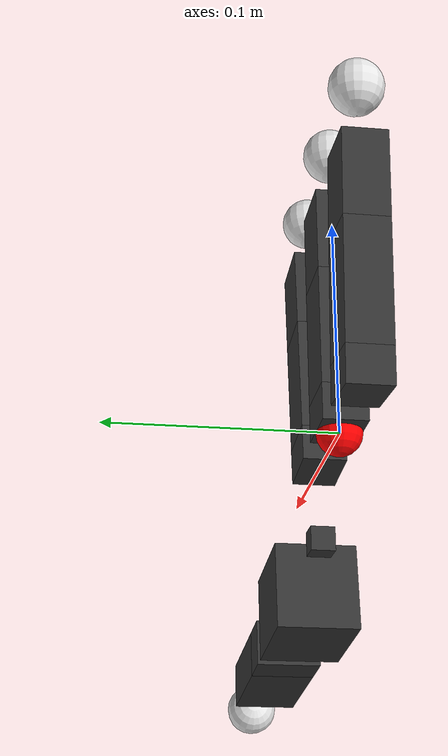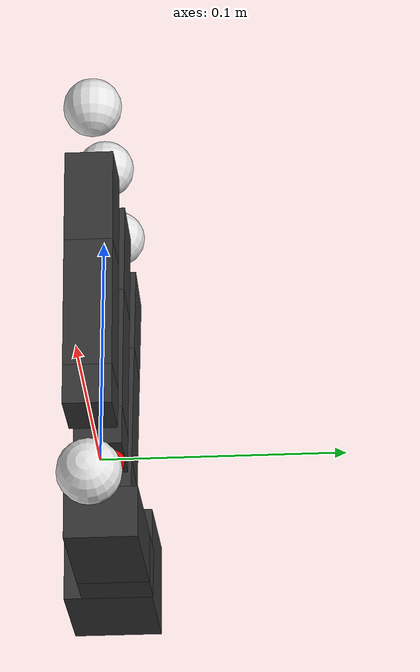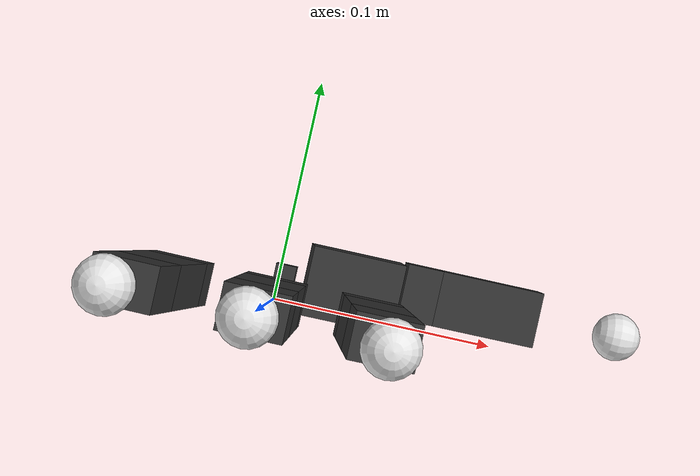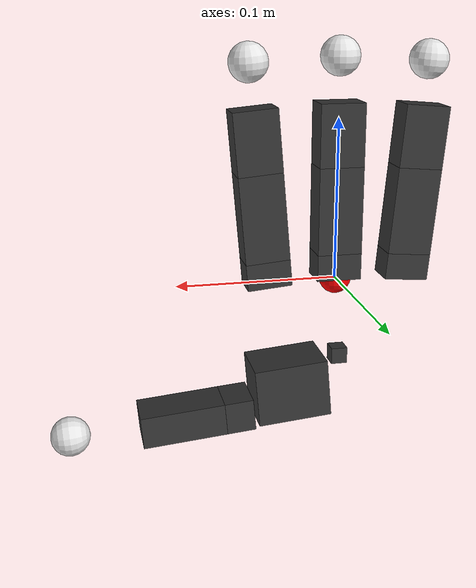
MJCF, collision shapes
<mujoco model="allegro">
  <compiler angle="radian"/>

  <asset>
    <mesh name="base_link" file="allegro/meshes/base_link.obj"/>
    <mesh name="link_0.0" file="allegro/meshes/link_0.0.obj"/>
    <mesh name="link_1.0" file="allegro/meshes/link_1.0.obj"/>
    <mesh name="link_2.0" file="allegro/meshes/link_2.0.obj"/>
    <mesh name="link_3.0" file="allegro/meshes/link_3.0.obj"/>
    <mesh name="link_3.0_tip" file="allegro/meshes/link_3.0_tip.obj"/>
    <mesh name="link_12.0_right" file="allegro/meshes/link_12.0_right.obj"/>
    <mesh name="link_13.0" file="allegro/meshes/link_13.0.obj"/>
    <mesh name="link_14.0" file="allegro/meshes/link_14.0.obj"/>
    <mesh name="link_15.0" file="allegro/meshes/link_15.0.obj"/>
    <mesh name="link_15.0_tip" file="allegro/meshes/link_15.0_tip.obj"/>
  </asset>

  <worldbody>
   <body name="eef" pos="0 0 0" quat="0.707107 0 0 -0.707107">
        <site name="ft_frame" pos="0 0 0" size="0.01 0.01 0.01" rgba="1 0 0 1" type="sphere" group="1"/>
        <geom type="mesh" contype="0" conaffinity="0" group="1" density="0" rgba="0.2 0.2 0.2 1" mesh="base_link"/>
        <geom size="0.005 0.005 0.005" pos="-0.0093 0 -0.0475" type="box" rgba="0.2 0.2 0.2 1"/>
        <body name="link_0.0" pos="0 0.0435 -0.001542" quat="0.999048 -0.0436194 0 0">
        <inertial pos="0 0 0" quat="0.707107 0.707107 0 0" mass="0.0119" diaginertia="1.01667e-06 1.01667e-06 6.47677e-07"/>
        <joint name="joint_0.0" pos="0 0 0" axis="0 0 1" range="-0.47 0.47" actuatorfrcrange="-0.35 0.35"/>
        <geom type="mesh" contype="0" conaffinity="0" group="1" density="0" rgba="0.2 0.2 0.2 1" mesh="link_0.0"/>
        <geom size="0.0098 0.01375 0.0082" pos="0 0 0.0082" type="box" rgba="0.2 0.2 0.2 1"/>
        <body name="link_1.0" pos="0 0 0.0164">
            <inertial pos="0 0 0" quat="0.702596 0.559386 -0.178354 0.402039" mass="0.065" diaginertia="6.12799e-05 6.12799e-05 6.12799e-05"/>
            <joint name="joint_1.0" pos="0 0 0" axis="0 1 0" range="-0.196 1.61" actuatorfrcrange="-0.35 0.35"/>
            <geom type="mesh" contype="0" conaffinity="0" group="1" density="0" rgba="0.2 0.2 0.2 1" mesh="link_1.0"/>
            <geom size="0.0098 0.01375 0.027" pos="0 0 0.027" type="box" rgba="0.2 0.2 0.2 1"/>
            <body name="link_2.0" pos="0 0 0.054">
            <inertial pos="0 0 0" quat="0.719796 0.528175 -0.157463 0.422055" mass="0.0355" diaginertia="2.20969e-05 2.20969e-05 2.20969e-05"/>
            <joint name="joint_2.0" pos="0 0 0" axis="0 1 0" range="-0.174 1.709" actuatorfrcrange="-0.35 0.35"/>
            <geom type="mesh" contype="0" conaffinity="0" group="1" density="0" rgba="0.2 0.2 0.2 1" mesh="link_2.0"/>
            <geom size="0.0098 0.01375 0.0192" pos="0 0 0.0192" type="box" rgba="0.2 0.2 0.2 1"/>
            <body name="link_3.0" pos="0 0 0.0384">
                <inertial pos="0 0 0.0169909" mass="0.0264" diaginertia="9.67371e-06 9.67371e-06 5.3186e-06"/>
                <joint name="joint_3.0" pos="0 0 0" axis="0 1 0" range="-0.227 1.618" actuatorfrcrange="-0.35 0.35"/>
                <geom type="mesh" contype="0" conaffinity="0" group="1" density="0" rgba="0.2 0.2 0.2 1" mesh="link_3.0"/>
                <geom size="0.0001" pos="0 0 0.01335" rgba="0.2 0.2 0.2 1"/>
                <geom pos="0 0 0.0267" type="mesh" contype="0" conaffinity="0" group="1" density="0" rgba="0.9 0.9 0.9 1" mesh="link_3.0_tip"/>
                <geom size="0.012" pos="0 0 0.0267" rgba="0.9 0.9 0.9 1"/>
            </body>
            </body>
        </body>
        </body>
        <body name="link_4.0" pos="0 0 0.0007">
        <inertial pos="0 0 0" quat="0.707107 0.707107 0 0" mass="0.0119" diaginertia="1.01667e-06 1.01667e-06 6.47677e-07"/>
        <joint name="joint_4.0" pos="0 0 0" axis="0 0 1" range="-0.47 0.47" actuatorfrcrange="-0.35 0.35"/>
        <geom type="mesh" contype="0" conaffinity="0" group="1" density="0" rgba="0.2 0.2 0.2 1" mesh="link_0.0"/>
        <geom size="0.0098 0.01375 0.0082" pos="0 0 0.0082" type="box" rgba="0.2 0.2 0.2 1"/>
        <body name="link_5.0" pos="0 0 0.0164">
            <inertial pos="0 0 0" quat="0.702596 0.559386 -0.178354 0.402039" mass="0.065" diaginertia="6.12799e-05 6.12799e-05 6.12799e-05"/>
            <joint name="joint_5.0" pos="0 0 0" axis="0 1 0" range="-0.196 1.61" actuatorfrcrange="-0.35 0.35"/>
            <geom type="mesh" contype="0" conaffinity="0" group="1" density="0" rgba="0.2 0.2 0.2 1" mesh="link_1.0"/>
            <geom size="0.0098 0.01375 0.027" pos="0 0 0.027" type="box" rgba="0.2 0.2 0.2 1"/>
            <body name="link_6.0" pos="0 0 0.054">
            <inertial pos="0 0 0" quat="0.719796 0.528175 -0.157463 0.422055" mass="0.0355" diaginertia="2.20969e-05 2.20969e-05 2.20969e-05"/>
            <joint name="joint_6.0" pos="0 0 0" axis="0 1 0" range="-0.174 1.709" actuatorfrcrange="-0.35 0.35"/>
            <geom type="mesh" contype="0" conaffinity="0" group="1" density="0" rgba="0.2 0.2 0.2 1" mesh="link_2.0"/>
            <geom size="0.0098 0.01375 0.0192" pos="0 0 0.0192" type="box" rgba="0.2 0.2 0.2 1"/>
            <body name="link_7.0" pos="0 0 0.0384">
                <inertial pos="0 0 0.0169909" mass="0.0264" diaginertia="9.67371e-06 9.67371e-06 5.3186e-06"/>
                <joint name="joint_7.0" pos="0 0 0" axis="0 1 0" range="-0.227 1.618" actuatorfrcrange="-0.35 0.35"/>
                <geom type="mesh" contype="0" conaffinity="0" group="1" density="0" rgba="0.2 0.2 0.2 1" mesh="link_3.0"/>
                <geom size="0.0001" pos="0 0 0.01335" rgba="0.2 0.2 0.2 1"/>
                <geom pos="0 0 0.0267" type="mesh" contype="0" conaffinity="0" group="1" density="0" rgba="0.9 0.9 0.9 1" mesh="link_3.0_tip"/>
                <geom size="0.012" pos="0 0 0.0267" rgba="0.9 0.9 0.9 1"/>
            </body>
            </body>
        </body>
        </body>
        <body name="link_8.0" pos="0 -0.0435 -0.001542" quat="0.999048 0.0436194 0 0">
        <inertial pos="0 0 0" quat="0.707107 0.707107 0 0" mass="0.0119" diaginertia="1.01667e-06 1.01667e-06 6.47677e-07"/>
        <joint name="joint_8.0" pos="0 0 0" axis="0 0 1" range="-0.47 0.47" actuatorfrcrange="-0.35 0.35"/>
        <geom type="mesh" contype="0" conaffinity="0" group="1" density="0" rgba="0.2 0.2 0.2 1" mesh="link_0.0"/>
        <geom size="0.0098 0.01375 0.0082" pos="0 0 0.0082" type="box" rgba="0.2 0.2 0.2 1"/>
        <body name="link_9.0" pos="0 0 0.0164">
            <inertial pos="0 0 0" quat="0.702596 0.559386 -0.178354 0.402039" mass="0.065" diaginertia="6.12799e-05 6.12799e-05 6.12799e-05"/>
            <joint name="joint_9.0" pos="0 0 0" axis="0 1 0" range="-0.196 1.61" actuatorfrcrange="-0.35 0.35"/>
            <geom type="mesh" contype="0" conaffinity="0" group="1" density="0" rgba="0.2 0.2 0.2 1" mesh="link_1.0"/>
            <geom size="0.0098 0.01375 0.027" pos="0 0 0.027" type="box" rgba="0.2 0.2 0.2 1"/>
            <body name="link_10.0" pos="0 0 0.054">
            <inertial pos="0 0 0" quat="0.719796 0.528175 -0.157463 0.422055" mass="0.0355" diaginertia="2.20969e-05 2.20969e-05 2.20969e-05"/>
            <joint name="joint_10.0" pos="0 0 0" axis="0 1 0" range="-0.174 1.709" actuatorfrcrange="-0.35 0.35"/>
            <geom type="mesh" contype="0" conaffinity="0" group="1" density="0" rgba="0.2 0.2 0.2 1" mesh="link_2.0"/>
            <geom size="0.0098 0.01375 0.0192" pos="0 0 0.0192" type="box" rgba="0.2 0.2 0.2 1"/>
            <body name="link_11.0" pos="0 0 0.0384">
                <inertial pos="0 0 0.0169909" mass="0.0264" diaginertia="9.67371e-06 9.67371e-06 5.3186e-06"/>
                <joint name="joint_11.0" pos="0 0 0" axis="0 1 0" range="-0.227 1.618" actuatorfrcrange="-0.35 0.35"/>
                <geom type="mesh" contype="0" conaffinity="0" group="1" density="0" rgba="0.2 0.2 0.2 1" mesh="link_3.0"/>
                <geom size="0.0001" pos="0 0 0.01335" rgba="0.2 0.2 0.2 1"/>
                <geom pos="0 0 0.0267" type="mesh" contype="0" conaffinity="0" group="1" density="0" rgba="0.9 0.9 0.9 1" mesh="link_3.0_tip"/>
                <geom size="0.012" pos="0 0 0.0267" rgba="0.9 0.9 0.9 1"/>
            </body>
            </body>
        </body>
        </body>
        <body name="link_12.0" pos="-0.0182 0.019333 -0.045987" quat="0.477714 -0.521334 -0.521334 -0.477714">
        <inertial pos="0 0 0" quat="0.692635 0.569362 -0.07143 0.437013" mass="0.0176" diaginertia="1.73852e-05 1.73852e-05 1.73852e-05"/>
        <joint name="joint_12.0" pos="0 0 0" axis="-1 0 0" range="0.263 1.396" actuatorfrcrange="-0.35 0.35"/>
        <geom quat="8.94897e-10 1 0 0" type="mesh" contype="0" conaffinity="0" group="1" density="0" rgba="0.2 0.2 0.2 1" mesh="link_12.0_right"/>
        <geom size="0.0179 0.017 0.02275" pos="-0.0179 0.009 0.0145" type="box" rgba="0.2 0.2 0.2 1"/>
        <body name="link_13.0" pos="-0.027 0.005 0.0399">
            <inertial pos="0 0 0" quat="-0.0269589 0.880876 0.334036 0.334292" mass="0.0119" diaginertia="4.33621e-06 4.33621e-06 4.33621e-06"/>
            <joint name="joint_13.0" pos="0 0 0" axis="0 0 1" range="-0.105 1.163" actuatorfrcrange="-0.35 0.35"/>
            <geom type="mesh" contype="0" conaffinity="0" group="1" density="0" rgba="0.2 0.2 0.2 1" mesh="link_13.0"/>
            <geom size="0.0098 0.01375 0.00885" pos="0 0 0.00885" type="box" rgba="0.2 0.2 0.2 1"/>
            <body name="link_14.0" pos="0 0 0.0177">
            <inertial pos="0 0 0" quat="0.70472 0.55555 -0.174905 0.405146" mass="0.038" diaginertia="3.35111e-05 3.35111e-05 3.35111e-05"/>
            <joint name="joint_14.0" pos="0 0 0" axis="0 1 0" range="-0.189 1.644" actuatorfrcrange="-0.35 0.35"/>
            <geom type="mesh" contype="0" conaffinity="0" group="1" density="0" rgba="0.2 0.2 0.2 1" mesh="link_14.0"/>
            <geom size="0.0098 0.01375 0.0257" pos="0 0 0.0257" type="box" rgba="0.2 0.2 0.2 1"/>
            <body name="link_15.0" pos="0 0 0.0514">
                <inertial pos="0 0 0.0127813" mass="0.0556" diaginertia="4.88098e-05 4.88098e-05 2.78326e-05"/>
                <joint name="joint_15.0" pos="0 0 0" axis="0 1 0" range="-0.162 1.719" actuatorfrcrange="-0.35 0.35"/>
                <geom type="mesh" contype="0" conaffinity="0" group="1" density="0" rgba="0.2 0.2 0.2 1" mesh="link_15.0"/>
                <geom size="0.0001" pos="0 0 0.02115" rgba="0.2 0.2 0.2 1"/>
                <geom pos="0 0 0.0423" type="mesh" contype="0" conaffinity="0" group="1" density="0" rgba="0.9 0.9 0.9 1" mesh="link_15.0_tip"/>
                <geom size="0.012" pos="0 0 0.0423" rgba="0.9 0.9 0.9 1"/>
            </body>
            </body>
        </body>
        </body>
    </body>
  </worldbody>
</mujoco>
